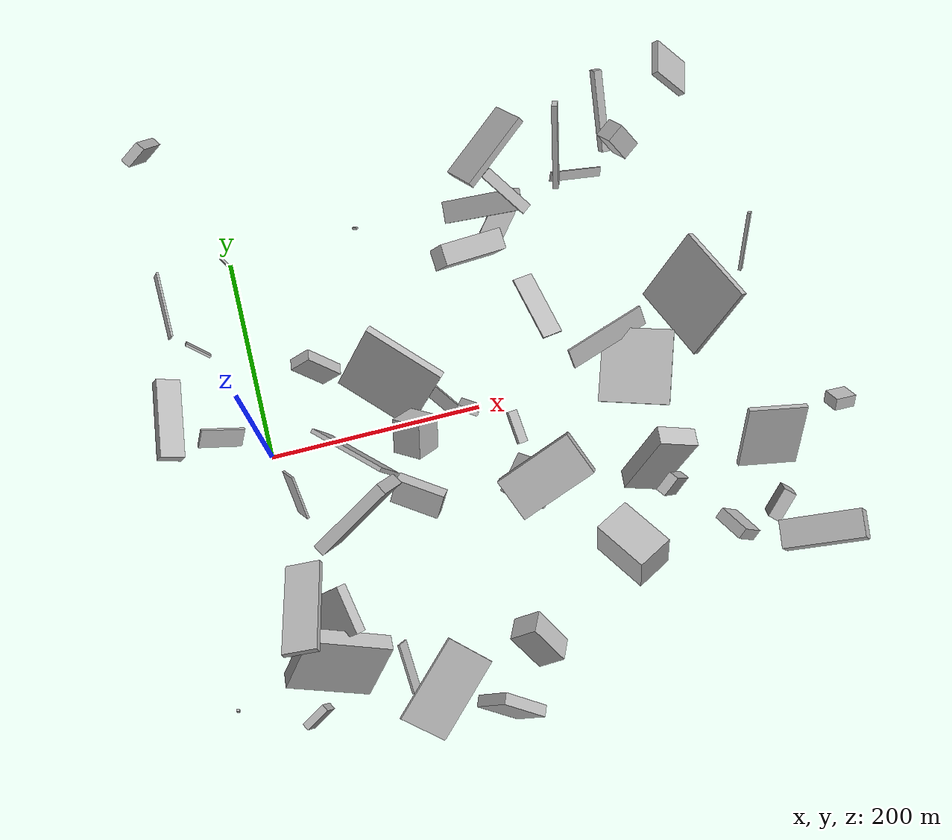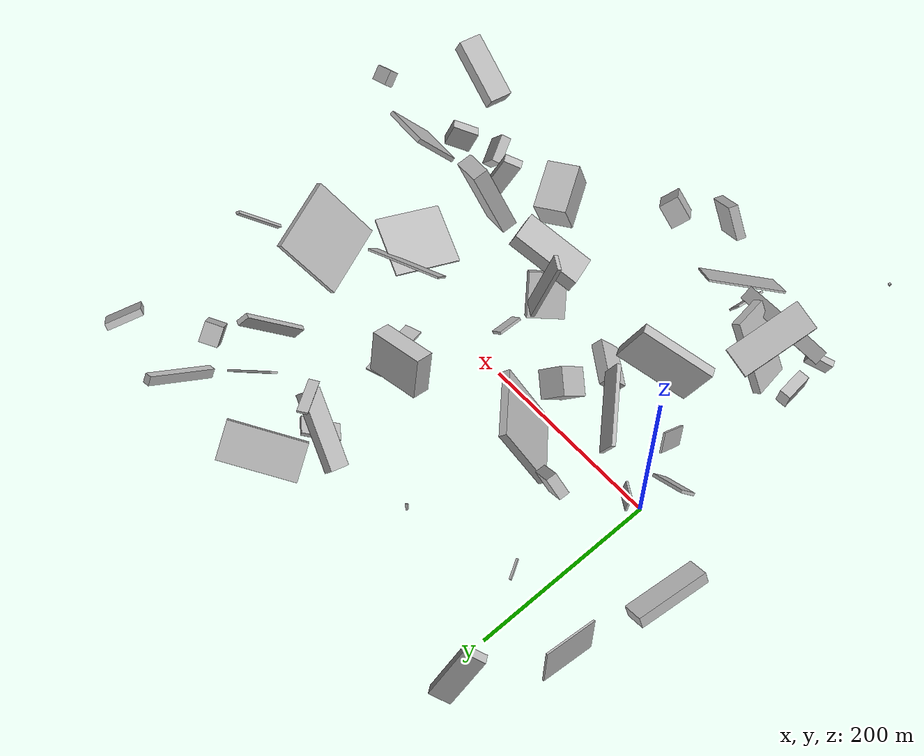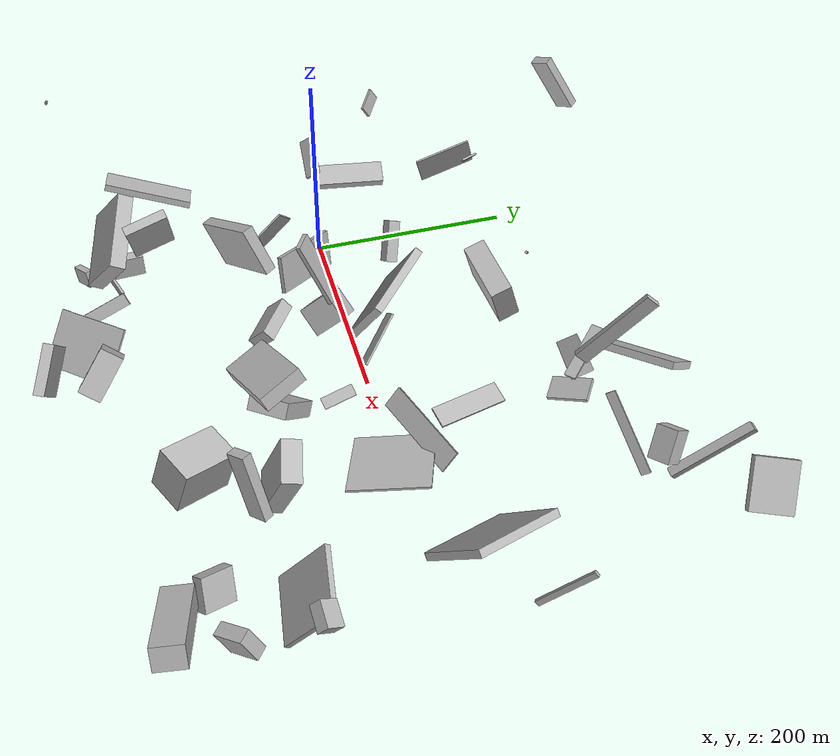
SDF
<sdf version="1.6">
 <world name="default">
  <scene>
   <sky><clouds><speed>12</speed></clouds></sky>
   <ambient>0.4 0.4 0.4 1</ambient>
   <background>0.7 0.7 0.7 1</background>
   <shadows>1</shadows>
  </scene>
  <gravity>0 0 -9.8066</gravity>
  <magnetic_field>6e-06 2.3e-05 -4.2e-05</magnetic_field>
  <physics default="0" name="default_physics" type="ode">
   <ode>
    <solver>
     <type>quick</type>
     <iters>10</iters>
     <sor>1.0</sor>
     <use_dynamic_moi_rescaling>0</use_dynamic_moi_rescaling>
    </solver>
    <constraints>
     <cfm>0</cfm>
     <erp>0.2</erp>
     <contact_max_correcting_vel>100</contact_max_correcting_vel>
     <contact_surface_layer>0.001</contact_surface_layer>
    </constraints>
   </ode>
   <max_step_size>0.004</max_step_size>
   <real_time_factor>1</real_time_factor>
   <real_time_update_rate>250</real_time_update_rate>
  </physics>
  <light name="sun" type="directional">
   <pose>0 0 10 0 0 0</pose>
   <diffuse>0.8 0.8 0.8 1</diffuse>
   <specular>0.2 0.2 0.2 1</specular>
   <attenuation>
    <range>1000</range>
    <constant>0.9</constant>
    <linear>0.01</linear>
    <quadratic>0.001</quadratic>
   </attenuation>
   <direction>-0.5 0.1 -0.9</direction>
  </light>
  <model name="building_1">
   <static>0</static>
   <pose>203.68948257097009 -246.1510676538709 63.23517087200194 -0.6425098757053564 -0.648074037735 -0.03231999159721726</pose>
   <link name="link">
    <gravity>0</gravity>
    <pose>0 0 21.0 0 0 0</pose>
    <collision name="collision"><geometry><box><size>26 21 42</size></box></geometry></collision>
    <visual name="visual">
     <cast_shadows>0</cast_shadows>
     <geometry><box><size>26 21 42</size></box></geometry>
     <material>
      <script>
       <uri>model://HANNAS_wall/materials/scripts</uri>
       <uri>model://HANNAS_wall/materials/textures</uri>
       <name>vrc/HANNAS_wall</name>
      </script>
     </material>
    </visual>
   </link>
  </model>
  <model name="building_2">
   <static>0</static>
   <pose>166.0392386979562 21.646098376478385 20.809613024663115 2.3865649286413606 0.5525934122500359 -0.8360640938326147</pose>
   <link name="link">
    <gravity>0</gravity>
    <pose>0 0 7.0 0 0 0</pose>
    <collision name="collision"><geometry><box><size>55 2 14</size></box></geometry></collision>
    <visual name="visual">
     <cast_shadows>0</cast_shadows>
     <geometry><box><size>55 2 14</size></box></geometry>
     <material>
      <script>
       <uri>model://HANNAS_wall/materials/scripts</uri>
       <uri>model://HANNAS_wall/materials/textures</uri>
       <name>vrc/HANNAS_wall</name>
      </script>
     </material>
    </visual>
   </link>
  </model>
  <model name="building_3">
   <static>0</static>
   <pose>393.97311038566943 -175.85678867781218 26.127126253128957 1.0316049079755043 0.3536478925679098 2.030212292074202</pose>
   <link name="link">
    <gravity>0</gravity>
    <pose>0 0 5.5 0 0 0</pose>
    <collision name="collision"><geometry><box><size>30 29 11</size></box></geometry></collision>
    <visual name="visual">
     <cast_shadows>0</cast_shadows>
     <geometry><box><size>30 29 11</size></box></geometry>
     <material>
      <script>
       <uri>model://HANNAS_wall/materials/scripts</uri>
       <uri>model://HANNAS_wall/materials/textures</uri>
       <name>vrc/HANNAS_wall</name>
      </script>
     </material>
    </visual>
   </link>
  </model>
  <model name="building_4">
   <static>0</static>
   <pose>-79.53645516211493 89.75643618706215 23.749071449852924 1.5387221474074502 0.5051464561831651 -0.1320133013352332</pose>
   <link name="link">
    <gravity>0</gravity>
    <pose>0 0 38.0 0 0 0</pose>
    <collision name="collision"><geometry><box><size>23 12 76</size></box></geometry></collision>
    <visual name="visual">
     <cast_shadows>0</cast_shadows>
     <geometry><box><size>23 12 76</size></box></geometry>
     <material>
      <script>
       <uri>model://HANNAS_wall/materials/scripts</uri>
       <uri>model://HANNAS_wall/materials/textures</uri>
       <name>vrc/HANNAS_wall</name>
      </script>
     </material>
    </visual>
   </link>
  </model>
  <model name="building_5">
   <static>0</static>
   <pose>222.8635174515278 -84.47137793383823 32.46696286867181 2.4057729853604104 -0.11958917807261485 0.8748845266940639</pose>
   <link name="link">
    <gravity>0</gravity>
    <pose>0 0 7.5 0 0 0</pose>
    <collision name="collision"><geometry><box><size>39 47 15</size></box></geometry></collision>
    <visual name="visual">
     <cast_shadows>0</cast_shadows>
     <geometry><box><size>39 47 15</size></box></geometry>
     <material>
      <script>
       <uri>model://HANNAS_wall/materials/scripts</uri>
       <uri>model://HANNAS_wall/materials/textures</uri>
       <name>vrc/HANNAS_wall</name>
      </script>
     </material>
    </visual>
   </link>
  </model>
  <model name="building_6">
   <static>0</static>
   <pose>144.28933316770832 -15.862130175725298 31.579720707940197 0.5816303453089864 0.7058712331258653 -1.7976397094282301</pose>
   <link name="link">
    <gravity>0</gravity>
    <pose>0 0 14.5 0 0 0</pose>
    <collision name="collision"><geometry><box><size>33 29 29</size></box></geometry></collision>
    <visual name="visual">
     <cast_shadows>0</cast_shadows>
     <geometry><box><size>33 29 29</size></box></geometry>
     <material>
      <script>
       <uri>model://HANNAS_wall/materials/scripts</uri>
       <uri>model://HANNAS_wall/materials/textures</uri>
       <name>vrc/HANNAS_wall</name>
      </script>
     </material>
    </visual>
   </link>
  </model>
  <model name="building_7">
   <static>0</static>
   <pose>482.2216639584951 83.63808910868343 48.350870382782496 0.8826194081198122 -0.2522318537558966 -0.6271804869020556</pose>
   <link name="link">
    <gravity>0</gravity>
    <pose>0 0 2.5 0 0 0</pose>
    <collision name="collision"><geometry><box><size>3 60 5</size></box></geometry></collision>
    <visual name="visual">
     <cast_shadows>0</cast_shadows>
     <geometry><box><size>3 60 5</size></box></geometry>
     <material>
      <script>
       <uri>model://HANNAS_wall/materials/scripts</uri>
       <uri>model://HANNAS_wall/materials/textures</uri>
       <name>vrc/HANNAS_wall</name>
      </script>
     </material>
    </visual>
   </link>
  </model>
  <model name="building_8">
   <static>0</static>
   <pose>253.02918380251737 186.09898720028198 33.588883556576135 0.5710723711901281 0.3943139444128629 -1.6367595126206114</pose>
   <link name="link">
    <gravity>0</gravity>
    <pose>0 0 6.0 0 0 0</pose>
    <collision name="collision"><geometry><box><size>21 80 12</size></box></geometry></collision>
    <visual name="visual">
     <cast_shadows>0</cast_shadows>
     <geometry><box><size>21 80 12</size></box></geometry>
     <material>
      <script>
       <uri>model://HANNAS_wall/materials/scripts</uri>
       <uri>model://HANNAS_wall/materials/textures</uri>
       <name>vrc/HANNAS_wall</name>
      </script>
     </material>
    </visual>
   </link>
  </model>
  <model name="building_9">
   <static>0</static>
   <pose>387.39293836781815 248.94727558169689 47.76370777910478 -2.8745689682809736 -0.6566740744568608 1.4895499818780014</pose>
   <link name="link">
    <gravity>0</gravity>
    <pose>0 0 5.0 0 0 0</pose>
    <collision name="collision"><geometry><box><size>80 8 10</size></box></geometry></collision>
    <visual name="visual">
     <cast_shadows>0</cast_shadows>
     <geometry><box><size>80 8 10</size></box></geometry>
     <material>
      <script>
       <uri>model://HANNAS_wall/materials/scripts</uri>
       <uri>model://HANNAS_wall/materials/textures</uri>
       <name>vrc/HANNAS_wall</name>
      </script>
     </material>
    </visual>
   </link>
  </model>
  <model name="building_10">
   <static>0</static>
   <pose>459.72694812892627 -204.9483837510592 75.83756826306433 0.4390474784088609 0.03981005421192719 -1.7364851899163023</pose>
   <link name="link">
    <gravity>0</gravity>
    <pose>0 0 10.0 0 0 0</pose>
    <collision name="collision"><geometry><box><size>25 72 20</size></box></geometry></collision>
    <visual name="visual">
     <cast_shadows>0</cast_shadows>
     <geometry><box><size>25 72 20</size></box></geometry>
     <material>
      <script>
       <uri>model://HANNAS_wall/materials/scripts</uri>
       <uri>model://HANNAS_wall/materials/textures</uri>
       <name>vrc/HANNAS_wall</name>
      </script>
     </material>
    </visual>
   </link>
  </model>
  <model name="building_11">
   <static>0</static>
   <pose>275.329370163313 73.78683510564386 31.7767890507957 -0.24137768651474054 0.025135862336057066 -1.362932454118703</pose>
   <link name="link">
    <gravity>0</gravity>
    <pose>0 0 1.0 0 0 0</pose>
    <collision name="collision"><geometry><box><size>64 20 2</size></box></geometry></collision>
    <visual name="visual">
     <cast_shadows>0</cast_shadows>
     <geometry><box><size>64 20 2</size></box></geometry>
     <material>
      <script>
       <uri>model://HANNAS_wall/materials/scripts</uri>
       <uri>model://HANNAS_wall/materials/textures</uri>
       <name>vrc/HANNAS_wall</name>
      </script>
     </material>
    </visual>
   </link>
  </model>
  <model name="building_12">
   <static>0</static>
   <pose>96.59464217002862 64.76365883151118 44.948239620548165 1.7785157505219593 0.5131700985571903 0.8920240634912316</pose>
   <link name="link">
    <gravity>0</gravity>
    <pose>0 0 40.0 0 0 0</pose>
    <collision name="collision"><geometry><box><size>8 80 80</size></box></geometry></collision>
    <visual name="visual">
     <cast_shadows>0</cast_shadows>
     <geometry><box><size>8 80 80</size></box></geometry>
     <material>
      <script>
       <uri>model://HANNAS_wall/materials/scripts</uri>
       <uri>model://HANNAS_wall/materials/textures</uri>
       <name>vrc/HANNAS_wall</name>
      </script>
     </material>
    </visual>
   </link>
  </model>
  <model name="building_13">
   <static>0</static>
   <pose>10.178973128452864 -222.7929855896389 55.573391750551664 0.5818587161981945 -0.4315094917104856 2.8544498829185176</pose>
   <link name="link">
    <gravity>0</gravity>
    <pose>0 0 30.5 0 0 0</pose>
    <collision name="collision"><geometry><box><size>75 15 61</size></box></geometry></collision>
    <visual name="visual">
     <cast_shadows>0</cast_shadows>
     <geometry><box><size>75 15 61</size></box></geometry>
     <material>
      <script>
       <uri>model://HANNAS_wall/materials/scripts</uri>
       <uri>model://HANNAS_wall/materials/textures</uri>
       <name>vrc/HANNAS_wall</name>
      </script>
     </material>
    </visual>
   </link>
  </model>
  <model name="building_14">
   <static>0</static>
   <pose>-8.399722150638311 -240.34482715935087 13.076633143497936 1.519198589262034 -0.31080287794601724 0.489916740232118</pose>
   <link name="link">
    <gravity>0</gravity>
    <pose>0 0 3.5 0 0 0</pose>
    <collision name="collision"><geometry><box><size>25 17 7</size></box></geometry></collision>
    <visual name="visual">
     <cast_shadows>0</cast_shadows>
     <geometry><box><size>25 17 7</size></box></geometry>
     <material>
      <script>
       <uri>model://HANNAS_wall/materials/scripts</uri>
       <uri>model://HANNAS_wall/materials/textures</uri>
       <name>vrc/HANNAS_wall</name>
      </script>
     </material>
    </visual>
   </link>
  </model>
  <model name="building_15">
   <static>0</static>
   <pose>437.46936710170473 -125.87990714024531 38.702967692140014 0.19571320730783534 0.6176066831740585 1.5526597721101814</pose>
   <link name="link">
    <gravity>0</gravity>
    <pose>0 0 31.0 0 0 0</pose>
    <collision name="collision"><geometry><box><size>5 55 62</size></box></geometry></collision>
    <visual name="visual">
     <cast_shadows>0</cast_shadows>
     <geometry><box><size>5 55 62</size></box></geometry>
     <material>
      <script>
       <uri>model://HANNAS_wall/materials/scripts</uri>
       <uri>model://HANNAS_wall/materials/textures</uri>
       <name>vrc/HANNAS_wall</name>
      </script>
     </material>
    </visual>
   </link>
  </model>
  <model name="building_16">
   <static>0</static>
   <pose>468.33509601479113 254.52254862317744 64.90907191223351 -0.174158529350852 -0.7484776161107004 -0.18970825366736535</pose>
   <link name="link">
    <gravity>0</gravity>
    <pose>0 0 22.0 0 0 0</pose>
    <collision name="collision"><geometry><box><size>7 37 44</size></box></geometry></collision>
    <visual name="visual">
     <cast_shadows>0</cast_shadows>
     <geometry><box><size>7 37 44</size></box></geometry>
     <material>
      <script>
       <uri>model://HANNAS_wall/materials/scripts</uri>
       <uri>model://HANNAS_wall/materials/textures</uri>
       <name>vrc/HANNAS_wall</name>
      </script>
     </material>
    </visual>
   </link>
  </model>
  <model name="building_17">
   <static>0</static>
   <pose>136.04534565928822 -222.33175224649946 31.757764122897285 1.7873894069953287 0.7448009250281001 -0.6541364934453373</pose>
   <link name="link">
    <gravity>0</gravity>
    <pose>0 0 40.0 0 0 0</pose>
    <collision name="collision"><geometry><box><size>55 2 80</size></box></geometry></collision>
    <visual name="visual">
     <cast_shadows>0</cast_shadows>
     <geometry><box><size>55 2 80</size></box></geometry>
     <material>
      <script>
       <uri>model://HANNAS_wall/materials/scripts</uri>
       <uri>model://HANNAS_wall/materials/textures</uri>
       <name>vrc/HANNAS_wall</name>
      </script>
     </material>
    </visual>
   </link>
  </model>
  <model name="building_18">
   <static>0</static>
   <pose>16.99996682123705 -53.57168295011392 50.54786476568432 1.9202347901029175 0.7739594602174854 2.1677250057477875</pose>
   <link name="link">
    <gravity>0</gravity>
    <pose>0 0 1.0 0 0 0</pose>
    <collision name="collision"><geometry><box><size>20 44 2</size></box></geometry></collision>
    <visual name="visual">
     <cast_shadows>0</cast_shadows>
     <geometry><box><size>20 44 2</size></box></geometry>
     <material>
      <script>
       <uri>model://HANNAS_wall/materials/scripts</uri>
       <uri>model://HANNAS_wall/materials/textures</uri>
       <name>vrc/HANNAS_wall</name>
      </script>
     </material>
    </visual>
   </link>
  </model>
  <model name="building_19">
   <static>0</static>
   <pose>59.62428671304822 55.77425263289899 48.47141044693315 1.9146487322733563 -0.8726598290372776 2.7504655167342076</pose>
   <link name="link">
    <gravity>0</gravity>
    <pose>0 0 5.5 0 0 0</pose>
    <collision name="collision"><geometry><box><size>41 23 11</size></box></geometry></collision>
    <visual name="visual">
     <cast_shadows>0</cast_shadows>
     <geometry><box><size>41 23 11</size></box></geometry>
     <material>
      <script>
       <uri>model://HANNAS_wall/materials/scripts</uri>
       <uri>model://HANNAS_wall/materials/textures</uri>
       <name>vrc/HANNAS_wall</name>
      </script>
     </material>
    </visual>
   </link>
  </model>
  <model name="building_20">
   <static>0</static>
   <pose>156.3277299815064 -284.10143413888454 55.80067205736977 1.7153826683320648 -0.6868651603311027 2.6609222311760217</pose>
   <link name="link">
    <gravity>0</gravity>
    <pose>0 0 5.0 0 0 0</pose>
    <collision name="collision"><geometry><box><size>46 36 10</size></box></geometry></collision>
    <visual name="visual">
     <cast_shadows>0</cast_shadows>
     <geometry><box><size>46 36 10</size></box></geometry>
     <material>
      <script>
       <uri>model://HANNAS_wall/materials/scripts</uri>
       <uri>model://HANNAS_wall/materials/textures</uri>
       <name>vrc/HANNAS_wall</name>
      </script>
     </material>
    </visual>
   </link>
  </model>
  <model name="building_21">
   <static>0</static>
   <pose>-30.168954721474307 -0.5362347144399324 98.7659381639935 2.304122377044153 -0.5350113180967921 3.095560101440174</pose>
   <link name="link">
    <gravity>0</gravity>
    <pose>0 0 1.5 0 0 0</pose>
    <collision name="collision"><geometry><box><size>40 17 3</size></box></geometry></collision>
    <visual name="visual">
     <cast_shadows>0</cast_shadows>
     <geometry><box><size>40 17 3</size></box></geometry>
     <material>
      <script>
       <uri>model://HANNAS_wall/materials/scripts</uri>
       <uri>model://HANNAS_wall/materials/textures</uri>
       <name>vrc/HANNAS_wall</name>
      </script>
     </material>
    </visual>
   </link>
  </model>
  <model name="building_22">
   <static>0</static>
   <pose>234.45455141434604 -101.293077075451 87.37282659510842 2.750367447386503 -0.290530958504604 1.9759800715834115</pose>
   <link name="link">
    <gravity>0</gravity>
    <pose>0 0 7.0 0 0 0</pose>
    <collision name="collision"><geometry><box><size>41 75 14</size></box></geometry></collision>
    <visual name="visual">
     <cast_shadows>0</cast_shadows>
     <geometry><box><size>41 75 14</size></box></geometry>
     <material>
      <script>
       <uri>model://HANNAS_wall/materials/scripts</uri>
       <uri>model://HANNAS_wall/materials/textures</uri>
       <name>vrc/HANNAS_wall</name>
      </script>
     </material>
    </visual>
   </link>
  </model>
  <model name="building_23">
   <static>0</static>
   <pose>72.05765258636211 -96.75913283203734 83.62159932859409 1.2435391401293059 -1.0896967063742744 -2.3268637437970607</pose>
   <link name="link">
    <gravity>0</gravity>
    <pose>0 0 5.5 0 0 0</pose>
    <collision name="collision"><geometry><box><size>48 80 11</size></box></geometry></collision>
    <visual name="visual">
     <cast_shadows>0</cast_shadows>
     <geometry><box><size>48 80 11</size></box></geometry>
     <material>
      <script>
       <uri>model://HANNAS_wall/materials/scripts</uri>
       <uri>model://HANNAS_wall/materials/textures</uri>
       <name>vrc/HANNAS_wall</name>
      </script>
     </material>
    </visual>
   </link>
  </model>
  <model name="building_24">
   <static>0</static>
   <pose>296.9196756390363 -177.04582323189138 33.73970486372143 0.2699851718150662 -0.15578489120342975 -2.6491887563000662</pose>
   <link name="link">
    <gravity>0</gravity>
    <pose>0 0 20.0 0 0 0</pose>
    <collision name="collision"><geometry><box><size>35 53 40</size></box></geometry></collision>
    <visual name="visual">
     <cast_shadows>0</cast_shadows>
     <geometry><box><size>35 53 40</size></box></geometry>
     <material>
      <script>
       <uri>model://HANNAS_wall/materials/scripts</uri>
       <uri>model://HANNAS_wall/materials/textures</uri>
       <name>vrc/HANNAS_wall</name>
      </script>
     </material>
    </visual>
   </link>
  </model>
  <model name="building_25">
   <static>0</static>
   <pose>485.7223089879905 -103.8386630804189 122.13754509090687 1.9636931766169603 0.6525088581556795 1.871944891948058</pose>
   <link name="link">
    <gravity>0</gravity>
    <pose>0 0 10.0 0 0 0</pose>
    <collision name="collision"><geometry><box><size>16 11 20</size></box></geometry></collision>
    <visual name="visual">
     <cast_shadows>0</cast_shadows>
     <geometry><box><size>16 11 20</size></box></geometry>
     <material>
      <script>
       <uri>model://HANNAS_wall/materials/scripts</uri>
       <uri>model://HANNAS_wall/materials/textures</uri>
       <name>vrc/HANNAS_wall</name>
      </script>
     </material>
    </visual>
   </link>
  </model>
  <model name="building_26">
   <static>0</static>
   <pose>-4.597620582894297 -198.80640686689324 15.26275527176734 1.6741278803640922 -0.02849659265863238 -1.4771562818357096</pose>
   <link name="link">
    <gravity>0</gravity>
    <pose>0 0 6.0 0 0 0</pose>
    <collision name="collision"><geometry><box><size>31 21 12</size></box></geometry></collision>
    <visual name="visual">
     <cast_shadows>0</cast_shadows>
     <geometry><box><size>31 21 12</size></box></geometry>
     <material>
      <script>
       <uri>model://HANNAS_wall/materials/scripts</uri>
       <uri>model://HANNAS_wall/materials/textures</uri>
       <name>vrc/HANNAS_wall</name>
      </script>
     </material>
    </visual>
   </link>
  </model>
  <model name="building_27">
   <static>0</static>
   <pose>421.37307061477895 44.809476675500946 44.280220780118455 -0.2374541055230215 -0.8562849020501718 0.5317343496353651</pose>
   <link name="link">
    <gravity>0</gravity>
    <pose>0 0 3.5 0 0 0</pose>
    <collision name="collision"><geometry><box><size>80 80 7</size></box></geometry></collision>
    <visual name="visual">
     <cast_shadows>0</cast_shadows>
     <geometry><box><size>80 80 7</size></box></geometry>
     <material>
      <script>
       <uri>model://HANNAS_wall/materials/scripts</uri>
       <uri>model://HANNAS_wall/materials/textures</uri>
       <name>vrc/HANNAS_wall</name>
      </script>
     </material>
    </visual>
   </link>
  </model>
  <model name="building_28">
   <static>0</static>
   <pose>391.8505475382702 197.76743845223533 76.97238862462957 2.7704591708225537 -0.8684264495928484 2.4650064033042822</pose>
   <link name="link">
    <gravity>0</gravity>
    <pose>0 0 10.5 0 0 0</pose>
    <collision name="collision"><geometry><box><size>29 19 21</size></box></geometry></collision>
    <visual name="visual">
     <cast_shadows>0</cast_shadows>
     <geometry><box><size>29 19 21</size></box></geometry>
     <material>
      <script>
       <uri>model://HANNAS_wall/materials/scripts</uri>
       <uri>model://HANNAS_wall/materials/textures</uri>
       <name>vrc/HANNAS_wall</name>
      </script>
     </material>
    </visual>
   </link>
  </model>
  <model name="building_29">
   <static>0</static>
   <pose>255.6471112074276 183.92197353529698 14.015294267594369 -2.185781327987117 -1.0836778718878965 -1.6278300069528475</pose>
   <link name="link">
    <gravity>0</gravity>
    <pose>0 0 11.5 0 0 0</pose>
    <collision name="collision"><geometry><box><size>4 40 23</size></box></geometry></collision>
    <visual name="visual">
     <cast_shadows>0</cast_shadows>
     <geometry><box><size>4 40 23</size></box></geometry>
     <material>
      <script>
       <uri>model://HANNAS_wall/materials/scripts</uri>
       <uri>model://HANNAS_wall/materials/textures</uri>
       <name>vrc/HANNAS_wall</name>
      </script>
     </material>
    </visual>
   </link>
  </model>
  <model name="building_30">
   <static>0</static>
   <pose>217.06064433019912 117.87149465047312 125.70883327134986 1.9043657453839038 0.15390190744990018 0.12449878991232574</pose>
   <link name="link">
    <gravity>0</gravity>
    <pose>0 0 9.5 0 0 0</pose>
    <collision name="collision"><geometry><box><size>56 43 19</size></box></geometry></collision>
    <visual name="visual">
     <cast_shadows>0</cast_shadows>
     <geometry><box><size>56 43 19</size></box></geometry>
     <material>
      <script>
       <uri>model://HANNAS_wall/materials/scripts</uri>
       <uri>model://HANNAS_wall/materials/textures</uri>
       <name>vrc/HANNAS_wall</name>
      </script>
     </material>
    </visual>
   </link>
  </model>
  <model name="building_31">
   <static>0</static>
   <pose>447.28042947056383 -166.00743744078613 21.329618741910934 -1.2019986747329332 1.1158444690657943 1.1778990044976327</pose>
   <link name="link">
    <gravity>0</gravity>
    <pose>0 0 6.0 0 0 0</pose>
    <collision name="collision"><geometry><box><size>26 29 12</size></box></geometry></collision>
    <visual name="visual">
     <cast_shadows>0</cast_shadows>
     <geometry><box><size>26 29 12</size></box></geometry>
     <material>
      <script>
       <uri>model://HANNAS_wall/materials/scripts</uri>
       <uri>model://HANNAS_wall/materials/textures</uri>
       <name>vrc/HANNAS_wall</name>
      </script>
     </material>
    </visual>
   </link>
  </model>
  <model name="building_32">
   <static>0</static>
   <pose>226.2511238445495 -18.929551280663635 26.7761916521871 -1.8756124329668797 -0.561045104621361 -2.869410778937795</pose>
   <link name="link">
    <gravity>0</gravity>
    <pose>0 0 15.5 0 0 0</pose>
    <collision name="collision"><geometry><box><size>11 3 31</size></box></geometry></collision>
    <visual name="visual">
     <cast_shadows>0</cast_shadows>
     <geometry><box><size>11 3 31</size></box></geometry>
     <material>
      <script>
       <uri>model://HANNAS_wall/materials/scripts</uri>
       <uri>model://HANNAS_wall/materials/textures</uri>
       <name>vrc/HANNAS_wall</name>
      </script>
     </material>
    </visual>
   </link>
  </model>
  <model name="building_33">
   <static>0</static>
   <pose>10.000760206114826 151.99350553195825 93.54638684443984 1.805738829202911 1.1652322182522947 -2.4125251867172897</pose>
   <link name="link">
    <gravity>0</gravity>
    <pose>0 0 10.0 0 0 0</pose>
    <collision name="collision"><geometry><box><size>2 2 20</size></box></geometry></collision>
    <visual name="visual">
     <cast_shadows>0</cast_shadows>
     <geometry><box><size>2 2 20</size></box></geometry>
     <material>
      <script>
       <uri>model://HANNAS_wall/materials/scripts</uri>
       <uri>model://HANNAS_wall/materials/textures</uri>
       <name>vrc/HANNAS_wall</name>
      </script>
     </material>
    </visual>
   </link>
  </model>
  <model name="building_34">
   <static>0</static>
   <pose>-26.997826874817143 59.66424205359788 160.95046198033683 -2.7984603415957627 0.4244529298284503 -0.6278299983861926</pose>
   <link name="link">
    <gravity>0</gravity>
    <pose>0 0 7.0 0 0 0</pose>
    <collision name="collision"><geometry><box><size>23 2 14</size></box></geometry></collision>
    <visual name="visual">
     <cast_shadows>0</cast_shadows>
     <geometry><box><size>23 2 14</size></box></geometry>
     <material>
      <script>
       <uri>model://HANNAS_wall/materials/scripts</uri>
       <uri>model://HANNAS_wall/materials/textures</uri>
       <name>vrc/HANNAS_wall</name>
      </script>
     </material>
    </visual>
   </link>
  </model>
  <model name="building_35">
   <static>0</static>
   <pose>352.81936241304186 -98.23372122449486 106.68074141189462 2.877975469771956 0.3394095026354524 -0.212283473644744</pose>
   <link name="link">
    <gravity>0</gravity>
    <pose>0 0 40.0 0 0 0</pose>
    <collision name="collision"><geometry><box><size>36 17 80</size></box></geometry></collision>
    <visual name="visual">
     <cast_shadows>0</cast_shadows>
     <geometry><box><size>36 17 80</size></box></geometry>
     <material>
      <script>
       <uri>model://HANNAS_wall/materials/scripts</uri>
       <uri>model://HANNAS_wall/materials/textures</uri>
       <name>vrc/HANNAS_wall</name>
      </script>
     </material>
    </visual>
   </link>
  </model>
  <model name="building_36">
   <static>0</static>
   <pose>272.21762426227644 180.5833376291487 67.37909810862797 -0.14438514804020894 -0.4363345890421204 2.2770222257267103</pose>
   <link name="link">
    <gravity>0</gravity>
    <pose>0 0 1.0 0 0 0</pose>
    <collision name="collision"><geometry><box><size>53 11 2</size></box></geometry></collision>
    <visual name="visual">
     <cast_shadows>0</cast_shadows>
     <geometry><box><size>53 11 2</size></box></geometry>
     <material>
      <script>
       <uri>model://HANNAS_wall/materials/scripts</uri>
       <uri>model://HANNAS_wall/materials/textures</uri>
       <name>vrc/HANNAS_wall</name>
      </script>
     </material>
    </visual>
   </link>
  </model>
  <model name="building_37">
   <static>0</static>
   <pose>-47.94747741582424 272.73480078518276 134.4875569785167 1.9518403249540497 -0.3919923406891934 0.5111985268951856</pose>
   <link name="link">
    <gravity>0</gravity>
    <pose>0 0 4.5 0 0 0</pose>
    <collision name="collision"><geometry><box><size>21 63 9</size></box></geometry></collision>
    <visual name="visual">
     <cast_shadows>0</cast_shadows>
     <geometry><box><size>21 63 9</size></box></geometry>
     <material>
      <script>
       <uri>model://HANNAS_wall/materials/scripts</uri>
       <uri>model://HANNAS_wall/materials/textures</uri>
       <name>vrc/HANNAS_wall</name>
      </script>
     </material>
    </visual>
   </link>
  </model>
  <model name="building_38">
   <static>0</static>
   <pose>84.18882965083105 -222.6543932207192 38.29619419310432 -0.4721296862936582 0.5422234678801189 2.9450726047804623</pose>
   <link name="link">
    <gravity>0</gravity>
    <pose>0 0 6.0 0 0 0</pose>
    <collision name="collision"><geometry><box><size>2 45 12</size></box></geometry></collision>
    <visual name="visual">
     <cast_shadows>0</cast_shadows>
     <geometry><box><size>2 45 12</size></box></geometry>
     <material>
      <script>
       <uri>model://HANNAS_wall/materials/scripts</uri>
       <uri>model://HANNAS_wall/materials/textures</uri>
       <name>vrc/HANNAS_wall</name>
      </script>
     </material>
    </visual>
   </link>
  </model>
  <model name="building_39">
   <static>0</static>
   <pose>315.04892175514783 175.27886413859494 144.74502980176317 2.2463974956658617 0.10345554357767292 2.8346057599646226</pose>
   <link name="link">
    <gravity>0</gravity>
    <pose>0 0 6.5 0 0 0</pose>
    <collision name="collision"><geometry><box><size>5 80 13</size></box></geometry></collision>
    <visual name="visual">
     <cast_shadows>0</cast_shadows>
     <geometry><box><size>5 80 13</size></box></geometry>
     <material>
      <script>
       <uri>model://HANNAS_wall/materials/scripts</uri>
       <uri>model://HANNAS_wall/materials/textures</uri>
       <name>vrc/HANNAS_wall</name>
      </script>
     </material>
    </visual>
   </link>
  </model>
  <model name="building_40">
   <static>0</static>
   <pose>129.39377205556048 -68.85696957147447 36.65893632207303 2.38729525935995 0.029776894136175926 -0.5982502240390973</pose>
   <link name="link">
    <gravity>0</gravity>
    <pose>0 0 12.5 0 0 0</pose>
    <collision name="collision"><geometry><box><size>46 13 25</size></box></geometry></collision>
    <visual name="visual">
     <cast_shadows>0</cast_shadows>
     <geometry><box><size>46 13 25</size></box></geometry>
     <material>
      <script>
       <uri>model://HANNAS_wall/materials/scripts</uri>
       <uri>model://HANNAS_wall/materials/textures</uri>
       <name>vrc/HANNAS_wall</name>
      </script>
     </material>
    </visual>
   </link>
  </model>
  <model name="building_41">
   <static>0</static>
   <pose>236.53587599828955 218.44107950989218 33.84037801096538 1.1854025069328817 -0.8903649548426325 2.529113960748036</pose>
   <link name="link">
    <gravity>0</gravity>
    <pose>0 0 40.0 0 0 0</pose>
    <collision name="collision"><geometry><box><size>7 40 80</size></box></geometry></collision>
    <visual name="visual">
     <cast_shadows>0</cast_shadows>
     <geometry><box><size>7 40 80</size></box></geometry>
     <material>
      <script>
       <uri>model://HANNAS_wall/materials/scripts</uri>
       <uri>model://HANNAS_wall/materials/textures</uri>
       <name>vrc/HANNAS_wall</name>
      </script>
     </material>
    </visual>
   </link>
  </model>
  <model name="building_42">
   <static>0</static>
   <pose>28.102710752590035 -171.1499693812343 77.36031753009954 0.34069193058346586 -0.9700440639347867 -0.10118226477515758</pose>
   <link name="link">
    <gravity>0</gravity>
    <pose>0 0 4.5 0 0 0</pose>
    <collision name="collision"><geometry><box><size>80 42 9</size></box></geometry></collision>
    <visual name="visual">
     <cast_shadows>0</cast_shadows>
     <geometry><box><size>80 42 9</size></box></geometry>
     <material>
      <script>
       <uri>model://HANNAS_wall/materials/scripts</uri>
       <uri>model://HANNAS_wall/materials/textures</uri>
       <name>vrc/HANNAS_wall</name>
      </script>
     </material>
    </visual>
   </link>
  </model>
  <model name="building_43">
   <static>0</static>
   <pose>0.9331933015792977 -202.42991382439232 132.44897948984317 2.4225212007133816 -1.141438923298747 2.1308682704049926</pose>
   <link name="link">
    <gravity>0</gravity>
    <pose>0 0 40.0 0 0 0</pose>
    <collision name="collision"><geometry><box><size>6 31 80</size></box></geometry></collision>
    <visual name="visual">
     <cast_shadows>0</cast_shadows>
     <geometry><box><size>6 31 80</size></box></geometry>
     <material>
      <script>
       <uri>model://HANNAS_wall/materials/scripts</uri>
       <uri>model://HANNAS_wall/materials/textures</uri>
       <name>vrc/HANNAS_wall</name>
      </script>
     </material>
    </visual>
   </link>
  </model>
  <model name="building_44">
   <static>0</static>
   <pose>-66.4620192966721 188.02396793878106 45.72948560524835 1.8741681072453726 0.21721754747565933 0.059509047967666796</pose>
   <link name="link">
    <gravity>0</gravity>
    <pose>0 0 30.5 0 0 0</pose>
    <collision name="collision"><geometry><box><size>2 34 61</size></box></geometry></collision>
    <visual name="visual">
     <cast_shadows>0</cast_shadows>
     <geometry><box><size>2 34 61</size></box></geometry>
     <material>
      <script>
       <uri>model://HANNAS_wall/materials/scripts</uri>
       <uri>model://HANNAS_wall/materials/textures</uri>
       <name>vrc/HANNAS_wall</name>
      </script>
     </material>
    </visual>
   </link>
  </model>
  <model name="building_45">
   <static>0</static>
   <pose>347.6441452696856 198.1739226158037 40.55964127863552 -2.4734387335688455 -0.6979093759013074 -2.8612042096370898</pose>
   <link name="link">
    <gravity>0</gravity>
    <pose>0 0 4.5 0 0 0</pose>
    <collision name="collision"><geometry><box><size>77 2 9</size></box></geometry></collision>
    <visual name="visual">
     <cast_shadows>0</cast_shadows>
     <geometry><box><size>77 2 9</size></box></geometry>
     <material>
      <script>
       <uri>model://HANNAS_wall/materials/scripts</uri>
       <uri>model://HANNAS_wall/materials/textures</uri>
       <name>vrc/HANNAS_wall</name>
      </script>
     </material>
    </visual>
   </link>
  </model>
  <model name="building_46">
   <static>0</static>
   <pose>325.47168123811764 7.695740364760567 67.80081055773476 -0.7251863653599964 0.07508195402997049 0.34744426250730065</pose>
   <link name="link">
    <gravity>0</gravity>
    <pose>0 0 10.0 0 0 0</pose>
    <collision name="collision"><geometry><box><size>80 2 20</size></box></geometry></collision>
    <visual name="visual">
     <cast_shadows>0</cast_shadows>
     <geometry><box><size>80 2 20</size></box></geometry>
     <material>
      <script>
       <uri>model://HANNAS_wall/materials/scripts</uri>
       <uri>model://HANNAS_wall/materials/textures</uri>
       <name>vrc/HANNAS_wall</name>
      </script>
     </material>
    </visual>
   </link>
  </model>
  <model name="building_47">
   <static>0</static>
   <pose>124.14607374270537 183.4086525294557 57.723784575631505 -0.7655140698141066 -0.3496515850749217 -2.570749284934701</pose>
   <link name="link">
    <gravity>0</gravity>
    <pose>0 0 3.0 0 0 0</pose>
    <collision name="collision"><geometry><box><size>2 2 6</size></box></geometry></collision>
    <visual name="visual">
     <cast_shadows>0</cast_shadows>
     <geometry><box><size>2 2 6</size></box></geometry>
     <material>
      <script>
       <uri>model://HANNAS_wall/materials/scripts</uri>
       <uri>model://HANNAS_wall/materials/textures</uri>
       <name>vrc/HANNAS_wall</name>
      </script>
     </material>
    </visual>
   </link>
  </model>
  <model name="building_48">
   <static>0</static>
   <pose>181.66985598131907 -39.242704035478425 139.41420727633513 -0.26857987686157747 -1.1915809120730738 -1.8892914112098171</pose>
   <link name="link">
    <gravity>0</gravity>
    <pose>0 0 2.0 0 0 0</pose>
    <collision name="collision"><geometry><box><size>68 18 4</size></box></geometry></collision>
    <visual name="visual">
     <cast_shadows>0</cast_shadows>
     <geometry><box><size>68 18 4</size></box></geometry>
     <material>
      <script>
       <uri>model://HANNAS_wall/materials/scripts</uri>
       <uri>model://HANNAS_wall/materials/textures</uri>
       <name>vrc/HANNAS_wall</name>
      </script>
     </material>
    </visual>
   </link>
  </model>
  <model name="building_49">
   <static>0</static>
   <pose>51.33069596403382 -1.8665627609119917 45.747274989203355 0.7614787372266578 1.184708303591404 -0.02064678457582672</pose>
   <link name="link">
    <gravity>0</gravity>
    <pose>0 0 40.0 0 0 0</pose>
    <collision name="collision"><geometry><box><size>36 4 80</size></box></geometry></collision>
    <visual name="visual">
     <cast_shadows>0</cast_shadows>
     <geometry><box><size>36 4 80</size></box></geometry>
     <material>
      <script>
       <uri>model://HANNAS_wall/materials/scripts</uri>
       <uri>model://HANNAS_wall/materials/textures</uri>
       <name>vrc/HANNAS_wall</name>
      </script>
     </material>
    </visual>
   </link>
  </model>
  <model name="building_50">
   <static>0</static>
   <pose>332.59920747743274 -48.175901815447475 59.86706209686119 0.8689055442254853 -1.3153465856309579 -2.78542728638707</pose>
   <link name="link">
    <gravity>0</gravity>
    <pose>0 0 34.5 0 0 0</pose>
    <collision name="collision"><geometry><box><size>2 65 69</size></box></geometry></collision>
    <visual name="visual">
     <cast_shadows>0</cast_shadows>
     <geometry><box><size>2 65 69</size></box></geometry>
     <material>
      <script>
       <uri>model://HANNAS_wall/materials/scripts</uri>
       <uri>model://HANNAS_wall/materials/textures</uri>
       <name>vrc/HANNAS_wall</name>
      </script>
     </material>
    </visual>
   </link>
  </model>
  <model name="building_51">
   <static>0</static>
   <pose>-45.72631201033627 -242.32213021678376 197.19363253443726 -1.6367792810737591 0.33920688970241497 1.2597575550352076</pose>
   <link name="link">
    <gravity>0</gravity>
    <pose>0 0 1.0 0 0 0</pose>
    <collision name="collision"><geometry><box><size>2 3 2</size></box></geometry></collision>
    <visual name="visual">
     <cast_shadows>0</cast_shadows>
     <geometry><box><size>2 3 2</size></box></geometry>
     <material>
      <script>
       <uri>model://HANNAS_wall/materials/scripts</uri>
       <uri>model://HANNAS_wall/materials/textures</uri>
       <name>vrc/HANNAS_wall</name>
      </script>
     </material>
    </visual>
   </link>
  </model>
  <model name="building_52">
   <static>0</static>
   <pose>50.280329688021524 -212.04014718161264 46.93825415755186 2.8205650862851073 0.041201599029793166 0.3237174481247775</pose>
   <link name="link">
    <gravity>0</gravity>
    <pose>0 0 2.0 0 0 0</pose>
    <collision name="collision"><geometry><box><size>31 3 4</size></box></geometry></collision>
    <visual name="visual">
     <cast_shadows>0</cast_shadows>
     <geometry><box><size>31 3 4</size></box></geometry>
     <material>
      <script>
       <uri>model://HANNAS_wall/materials/scripts</uri>
       <uri>model://HANNAS_wall/materials/textures</uri>
       <name>vrc/HANNAS_wall</name>
      </script>
     </material>
    </visual>
   </link>
  </model>
  <model name="building_53">
   <static>0</static>
   <pose>353.0027012250605 -126.4132193940276 46.10933409530948 -0.3695066029148125 0.06843708122075205 2.1824133520382683</pose>
   <link name="link">
    <gravity>0</gravity>
    <pose>0 0 31.0 0 0 0</pose>
    <collision name="collision"><geometry><box><size>9 19 62</size></box></geometry></collision>
    <visual name="visual">
     <cast_shadows>0</cast_shadows>
     <geometry><box><size>9 19 62</size></box></geometry>
     <material>
      <script>
       <uri>model://HANNAS_wall/materials/scripts</uri>
       <uri>model://HANNAS_wall/materials/textures</uri>
       <name>vrc/HANNAS_wall</name>
      </script>
     </material>
    </visual>
   </link>
  </model>
 </world>
</sdf>
